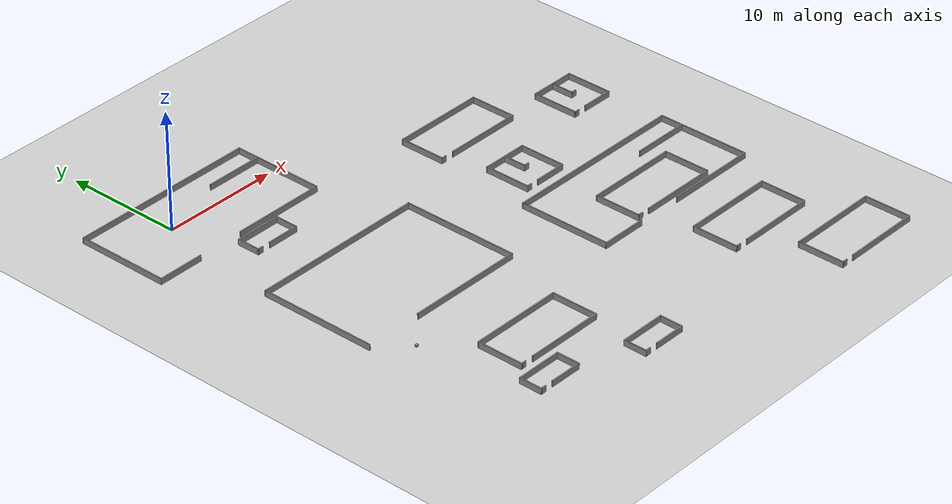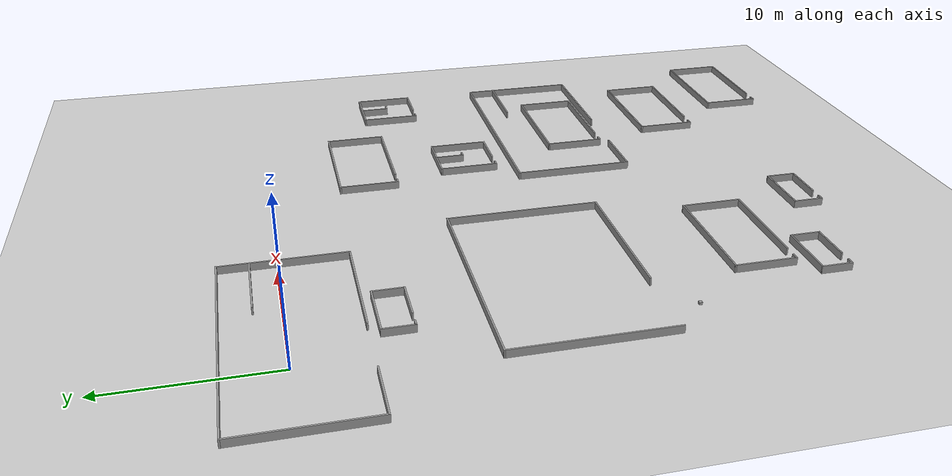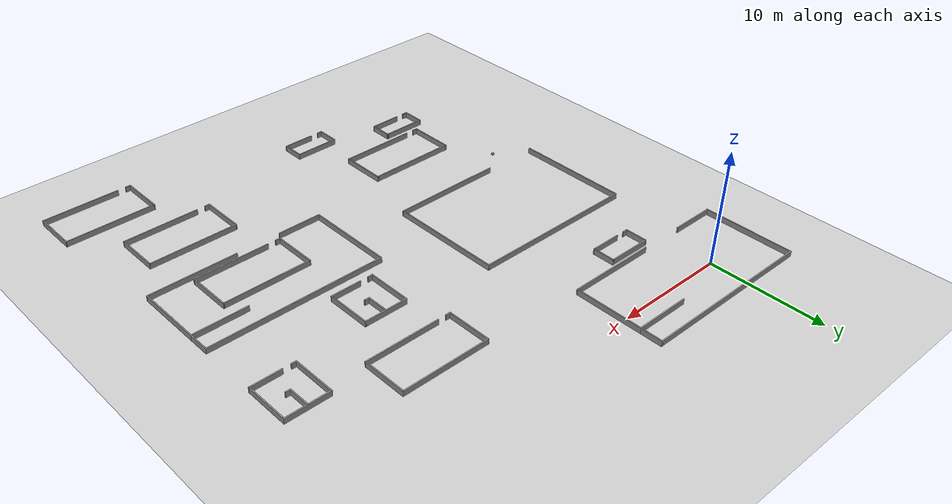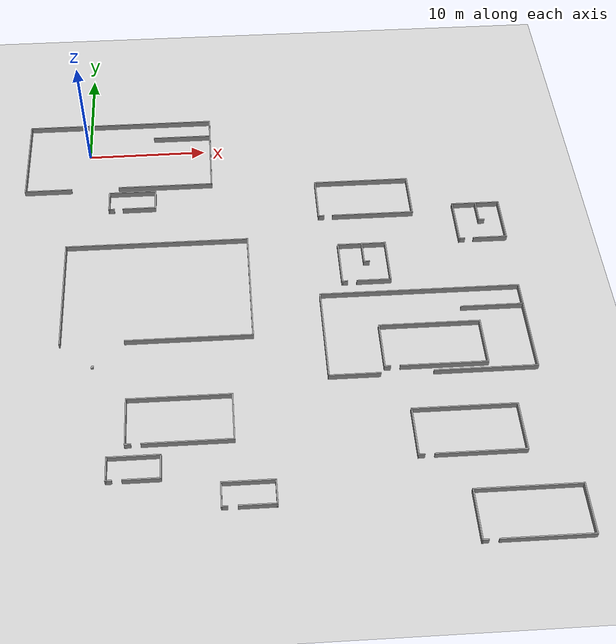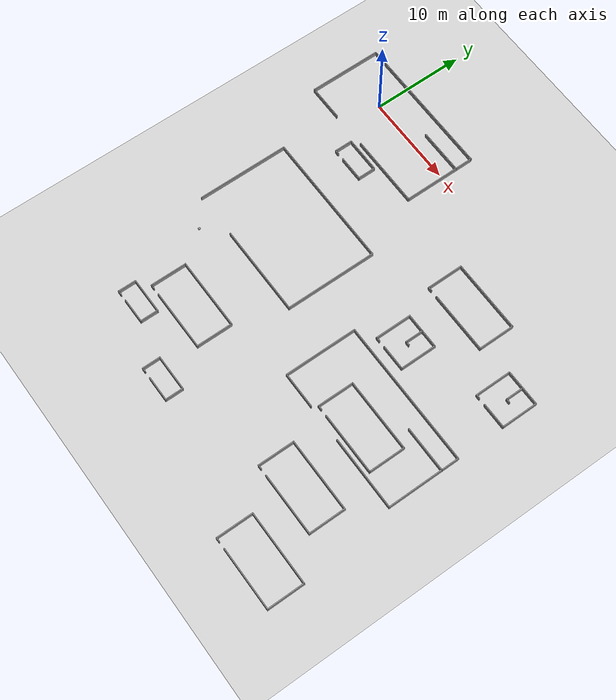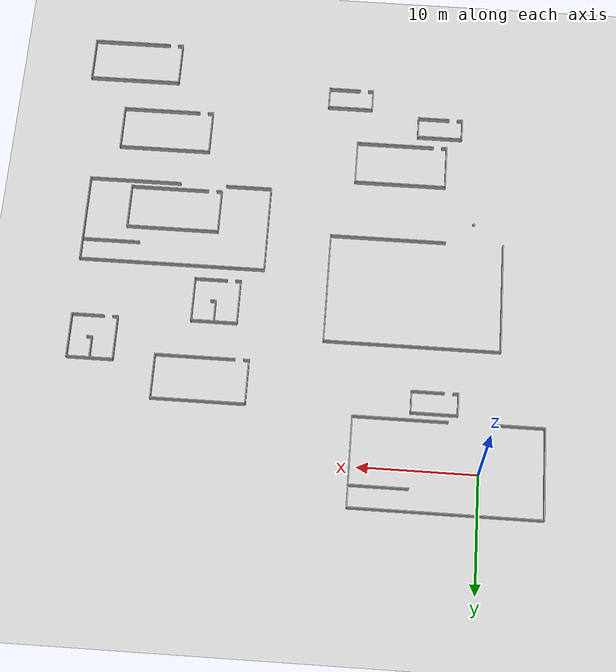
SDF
<sdf version="1.6">
 <world name="default">
  <model name="ground_plane">
   <static>1</static>
   <link name="link">
    <collision name="collision">
     <geometry><plane><normal>0 0 1</normal><size>80 80</size></plane></geometry>
     <surface>
      <contact><collide_bitmask>65535</collide_bitmask></contact>
      <friction><ode><mu>100</mu><mu2>50</mu2></ode></friction>
     </surface>
     <max_contacts>15</max_contacts>
    </collision>
    <visual name="visual">
     <cast_shadows>0</cast_shadows>
     <geometry><plane><normal>0 0 1</normal><size>80 80</size></plane></geometry>
     <material>
      <script><uri>file://media/materials/scripts/gazebo.material</uri><name>Gazebo/Grey</name></script>
     </material>
    </visual>
   </link>
  </model>
  <model name="shape2">
   <pose>3.8 -5.9 0 0 -0 0</pose>
   <link name="Wall_0">
    <collision name="Wall_0_Collision">
     <geometry><box><size>3.98685 0.1 0.5</size></box></geometry>
     <pose>0 0 0.25 0 -0 0</pose>
    </collision>
    <visual name="Wall_0_Visual">
     <pose>0 0 0.25 0 -0 0</pose>
     <geometry><box><size>3.98685 0.1 0.5</size></box></geometry>
     <material>
      <script><uri>file://media/materials/scripts/gazebo.material</uri><name>Gazebo/Grey</name></script>
      <ambient>1 1 1 1</ambient>
     </material>
     <meta><layer>0</layer></meta>
    </visual>
    <pose>0.003288 0.95 0 0 -0 0</pose>
   </link>
   <link name="Wall_1">
    <collision name="Wall_1_Collision">
     <geometry><box><size>2 0.1 0.5</size></box></geometry>
     <pose>0 0 0.25 0 -0 0</pose>
    </collision>
    <visual name="Wall_1_Visual">
     <pose>0 0 0.25 0 -0 0</pose>
     <geometry><box><size>2 0.1 0.5</size></box></geometry>
     <material>
      <script><uri>file://media/materials/scripts/gazebo.material</uri><name>Gazebo/Grey</name></script>
      <ambient>1 1 1 1</ambient>
     </material>
     <meta><layer>0</layer></meta>
    </visual>
    <pose>1.94671 0 0 0 -0 -1.5708</pose>
   </link>
   <link name="Wall_2">
    <collision name="Wall_2_Collision">
     <geometry><box><size>2.8 0.1 0.5</size></box></geometry>
     <pose>0 0 0.25 0 -0 0</pose>
    </collision>
    <visual name="Wall_2_Visual">
     <pose>0 0 0.25 0 -0 0</pose>
     <geometry><box><size>2.8 0.1 0.5</size></box></geometry>
     <material>
      <script><uri>file://media/materials/scripts/gazebo.material</uri><name>Gazebo/Grey</name></script>
      <ambient>1 1 1 1</ambient>
     </material>
     <meta><layer>0</layer></meta>
    </visual>
    <pose>0.596712 -0.95 0 0 -0 3.14159</pose>
   </link>
   <link name="Wall_4">
    <collision name="Wall_4_Collision">
     <geometry><box><size>2 0.1 0.5</size></box></geometry>
     <pose>0 0 0.25 0 -0 0</pose>
    </collision>
    <visual name="Wall_4_Visual">
     <pose>0 0 0.25 0 -0 0</pose>
     <geometry><box><size>2 0.1 0.5</size></box></geometry>
     <material>
      <script><uri>file://media/materials/scripts/gazebo.material</uri><name>Gazebo/Grey</name></script>
      <ambient>1 1 1 1</ambient>
     </material>
     <meta><layer>0</layer></meta>
    </visual>
    <pose>-1.94671 0 0 0 -0 -1.5708</pose>
   </link>
   <link name="Wall_5">
    <collision name="Wall_5_Collision">
     <geometry><box><size>0.5 0.1 0.5</size></box></geometry>
     <pose>0 0 0.25 0 -0 0</pose>
    </collision>
    <visual name="Wall_5_Visual">
     <pose>0 0 0.25 0 -0 0</pose>
     <geometry><box><size>0.5 0.1 0.5</size></box></geometry>
     <material>
      <script><uri>file://media/materials/scripts/gazebo.material</uri><name>Gazebo/Grey</name></script>
      <ambient>1 1 1 1</ambient>
     </material>
     <meta><layer>0</layer></meta>
    </visual>
    <pose>-1.74671 -0.95 0 0 -0 0</pose>
   </link>
   <static>1</static>
  </model>
  <model name="shape2">
   <pose>2.6 -0.400002 0 0 -0 0</pose>
   <link name="Wall_0">
    <collision name="Wall_0_Collision">
     <geometry><box><size>7.94986 0.1 0.5</size></box></geometry>
     <pose>0 0 0.25 0 -0 0</pose>
    </collision>
    <visual name="Wall_0_Visual">
     <pose>0 0 0.25 0 -0 0</pose>
     <geometry><box><size>7.94986 0.1 0.5</size></box></geometry>
     <material>
      <script><uri>file://media/materials/scripts/gazebo.material</uri><name>Gazebo/Grey</name></script>
      <ambient>1 1 1 1</ambient>
     </material>
     <meta><layer>0</layer></meta>
    </visual>
    <pose>-7.95004 0 0 0 -0 -1.5708</pose>
   </link>
   <link name="Wall_1">
    <collision name="Wall_1_Collision">
     <geometry><box><size>4 0.1 0.5</size></box></geometry>
     <pose>0 0 0.25 0 -0 0</pose>
    </collision>
    <visual name="Wall_1_Visual">
     <pose>0 0 0.25 0 -0 0</pose>
     <geometry><box><size>4 0.1 0.5</size></box></geometry>
     <material>
      <script><uri>file://media/materials/scripts/gazebo.material</uri><name>Gazebo/Grey</name></script>
      <ambient>1 1 1 1</ambient>
     </material>
     <meta><layer>0</layer></meta>
    </visual>
    <pose>-6.00004 -3.925 0 0 -0 0</pose>
   </link>
   <link name="Wall_3">
    <collision name="Wall_3_Collision">
     <geometry><box><size>16 0.1 0.5</size></box></geometry>
     <pose>0 0 0.25 0 -0 0</pose>
    </collision>
    <visual name="Wall_3_Visual">
     <pose>0 0 0.25 0 -0 0</pose>
     <geometry><box><size>16 0.1 0.5</size></box></geometry>
     <material>
      <script><uri>file://media/materials/scripts/gazebo.material</uri><name>Gazebo/Grey</name></script>
      <ambient>1 1 1 1</ambient>
     </material>
     <meta><layer>0</layer></meta>
    </visual>
    <pose>-4e-05 3.925 0 0 -0 0</pose>
   </link>
   <link name="Wall_4">
    <collision name="Wall_4_Collision">
     <geometry><box><size>2 0.1 0.5</size></box></geometry>
     <pose>0 0 0.25 0 -0 0</pose>
    </collision>
    <visual name="Wall_4_Visual">
     <pose>0 0 0.25 0 -0 0</pose>
     <geometry><box><size>2 0.1 0.5</size></box></geometry>
     <material>
      <script><uri>file://media/materials/scripts/gazebo.material</uri><name>Gazebo/Grey</name></script>
      <ambient>1 1 1 1</ambient>
     </material>
     <meta><layer>0</layer></meta>
    </visual>
    <pose>7.94996 2.975 0 0 -0 -1.5708</pose>
   </link>
   <link name="Wall_5">
    <collision name="Wall_5_Collision">
     <geometry><box><size>5 0.1 0.5</size></box></geometry>
     <pose>0 0 0.25 0 -0 0</pose>
    </collision>
    <visual name="Wall_5_Visual">
     <pose>0 0 0.25 0 -0 0</pose>
     <geometry><box><size>5 0.1 0.5</size></box></geometry>
     <material>
      <script><uri>file://media/materials/scripts/gazebo.material</uri><name>Gazebo/Grey</name></script>
      <ambient>1 1 1 1</ambient>
     </material>
     <meta><layer>0</layer></meta>
    </visual>
    <pose>5.49996 2.025 0 0 -0 3.14159</pose>
   </link>
   <link name="Wall_7">
    <collision name="Wall_7_Collision">
     <geometry><box><size>6.05 0.1 0.5</size></box></geometry>
     <pose>0 0 0.25 0 -0 0</pose>
    </collision>
    <visual name="Wall_7_Visual">
     <pose>0 0 0.25 0 -0 0</pose>
     <geometry><box><size>6.05 0.1 0.5</size></box></geometry>
     <material>
      <script><uri>file://media/materials/scripts/gazebo.material</uri><name>Gazebo/Grey</name></script>
      <ambient>1 1 1 1</ambient>
     </material>
     <meta><layer>0</layer></meta>
    </visual>
    <pose>7.94996 -0.95 0 0 -0 -1.5708</pose>
   </link>
   <link name="Wall_8">
    <collision name="Wall_8_Collision">
     <geometry><box><size>8.00016 0.1 0.5</size></box></geometry>
     <pose>0 0 0.25 0 -0 0</pose>
    </collision>
    <visual name="Wall_8_Visual">
     <pose>0 0 0.25 0 -0 0</pose>
     <geometry><box><size>8.00016 0.1 0.5</size></box></geometry>
     <material>
      <script><uri>file://media/materials/scripts/gazebo.material</uri><name>Gazebo/Grey</name></script>
      <ambient>1 1 1 1</ambient>
     </material>
     <meta><layer>0</layer></meta>
    </visual>
    <pose>3.99996 -3.925 0 0 -0 3.14159</pose>
   </link>
   <static>1</static>
  </model>
  <model name="shape3">
   <pose>5.9 -15.8 0 0 -0 0</pose>
   <link name="Wall_10">
    <collision name="Wall_10_Collision">
     <geometry><box><size>10 0.1 0.5</size></box></geometry>
     <pose>0 0 0.25 0 -0 0</pose>
    </collision>
    <visual name="Wall_10_Visual">
     <pose>0 0 0.25 0 -0 0</pose>
     <geometry><box><size>10 0.1 0.5</size></box></geometry>
     <material>
      <script><uri>file://media/materials/scripts/gazebo.material</uri><name>Gazebo/Grey</name></script>
      <ambient>1 1 1 1</ambient>
     </material>
     <meta><layer>0</layer></meta>
    </visual>
    <pose>2.5 -4.95 0 0 -0 3.14159</pose>
   </link>
   <link name="Wall_12">
    <collision name="Wall_12_Collision">
     <geometry><box><size>10 0.1 0.5</size></box></geometry>
     <pose>0 0 0.25 0 -0 0</pose>
    </collision>
    <visual name="Wall_12_Visual">
     <pose>0 0 0.25 0 -0 0</pose>
     <geometry><box><size>10 0.1 0.5</size></box></geometry>
     <material>
      <script><uri>file://media/materials/scripts/gazebo.material</uri><name>Gazebo/Grey</name></script>
      <ambient>1 1 1 1</ambient>
     </material>
     <meta><layer>0</layer></meta>
    </visual>
    <pose>-7.45 -0 0 0 -0 -1.5708</pose>
   </link>
   <link name="Wall_8">
    <collision name="Wall_8_Collision">
     <geometry><box><size>15 0.1 0.5</size></box></geometry>
     <pose>0 0 0.25 0 -0 0</pose>
    </collision>
    <visual name="Wall_8_Visual">
     <pose>0 0 0.25 0 -0 0</pose>
     <geometry><box><size>15 0.1 0.5</size></box></geometry>
     <material>
      <script><uri>file://media/materials/scripts/gazebo.material</uri><name>Gazebo/Grey</name></script>
      <ambient>1 1 1 1</ambient>
     </material>
     <meta><layer>0</layer></meta>
    </visual>
    <pose>-0 4.95 0 0 -0 0</pose>
   </link>
   <link name="Wall_9">
    <collision name="Wall_9_Collision">
     <geometry><box><size>10 0.1 0.5</size></box></geometry>
     <pose>0 0 0.25 0 -0 0</pose>
    </collision>
    <visual name="Wall_9_Visual">
     <pose>0 0 0.25 0 -0 0</pose>
     <geometry><box><size>10 0.1 0.5</size></box></geometry>
     <material>
      <script><uri>file://media/materials/scripts/gazebo.material</uri><name>Gazebo/Grey</name></script>
      <ambient>1 1 1 1</ambient>
     </material>
     <meta><layer>0</layer></meta>
    </visual>
    <pose>7.45 -0 0 0 -0 -1.5708</pose>
   </link>
   <static>1</static>
  </model>
  <model name="shape2">
   <pose>26.8 -21 0 0 -0 0</pose>
   <link name="Wall_0">
    <collision name="Wall_0_Collision">
     <geometry><box><size>7.94986 0.1 0.5</size></box></geometry>
     <pose>0 0 0.25 0 -0 0</pose>
    </collision>
    <visual name="Wall_0_Visual">
     <pose>0 0 0.25 0 -0 0</pose>
     <geometry><box><size>7.94986 0.1 0.5</size></box></geometry>
     <material>
      <script><uri>file://media/materials/scripts/gazebo.material</uri><name>Gazebo/Grey</name></script>
      <ambient>1 1 1 1</ambient>
     </material>
     <meta><layer>0</layer></meta>
    </visual>
    <pose>-7.95004 0 0 0 -0 -1.5708</pose>
   </link>
   <link name="Wall_1">
    <collision name="Wall_1_Collision">
     <geometry><box><size>4 0.1 0.5</size></box></geometry>
     <pose>0 0 0.25 0 -0 0</pose>
    </collision>
    <visual name="Wall_1_Visual">
     <pose>0 0 0.25 0 -0 0</pose>
     <geometry><box><size>4 0.1 0.5</size></box></geometry>
     <material>
      <script><uri>file://media/materials/scripts/gazebo.material</uri><name>Gazebo/Grey</name></script>
      <ambient>1 1 1 1</ambient>
     </material>
     <meta><layer>0</layer></meta>
    </visual>
    <pose>-6.00004 -3.925 0 0 -0 0</pose>
   </link>
   <link name="Wall_3">
    <collision name="Wall_3_Collision">
     <geometry><box><size>16 0.1 0.5</size></box></geometry>
     <pose>0 0 0.25 0 -0 0</pose>
    </collision>
    <visual name="Wall_3_Visual">
     <pose>0 0 0.25 0 -0 0</pose>
     <geometry><box><size>16 0.1 0.5</size></box></geometry>
     <material>
      <script><uri>file://media/materials/scripts/gazebo.material</uri><name>Gazebo/Grey</name></script>
      <ambient>1 1 1 1</ambient>
     </material>
     <meta><layer>0</layer></meta>
    </visual>
    <pose>-4e-05 3.925 0 0 -0 0</pose>
   </link>
   <link name="Wall_4">
    <collision name="Wall_4_Collision">
     <geometry><box><size>2 0.1 0.5</size></box></geometry>
     <pose>0 0 0.25 0 -0 0</pose>
    </collision>
    <visual name="Wall_4_Visual">
     <pose>0 0 0.25 0 -0 0</pose>
     <geometry><box><size>2 0.1 0.5</size></box></geometry>
     <material>
      <script><uri>file://media/materials/scripts/gazebo.material</uri><name>Gazebo/Grey</name></script>
      <ambient>1 1 1 1</ambient>
     </material>
     <meta><layer>0</layer></meta>
    </visual>
    <pose>7.94996 2.975 0 0 -0 -1.5708</pose>
   </link>
   <link name="Wall_5">
    <collision name="Wall_5_Collision">
     <geometry><box><size>5 0.1 0.5</size></box></geometry>
     <pose>0 0 0.25 0 -0 0</pose>
    </collision>
    <visual name="Wall_5_Visual">
     <pose>0 0 0.25 0 -0 0</pose>
     <geometry><box><size>5 0.1 0.5</size></box></geometry>
     <material>
      <script><uri>file://media/materials/scripts/gazebo.material</uri><name>Gazebo/Grey</name></script>
      <ambient>1 1 1 1</ambient>
     </material>
     <meta><layer>0</layer></meta>
    </visual>
    <pose>5.49996 2.025 0 0 -0 3.14159</pose>
   </link>
   <link name="Wall_7">
    <collision name="Wall_7_Collision">
     <geometry><box><size>6.05 0.1 0.5</size></box></geometry>
     <pose>0 0 0.25 0 -0 0</pose>
    </collision>
    <visual name="Wall_7_Visual">
     <pose>0 0 0.25 0 -0 0</pose>
     <geometry><box><size>6.05 0.1 0.5</size></box></geometry>
     <material>
      <script><uri>file://media/materials/scripts/gazebo.material</uri><name>Gazebo/Grey</name></script>
      <ambient>1 1 1 1</ambient>
     </material>
     <meta><layer>0</layer></meta>
    </visual>
    <pose>7.94996 -0.95 0 0 -0 -1.5708</pose>
   </link>
   <link name="Wall_8">
    <collision name="Wall_8_Collision">
     <geometry><box><size>8.00016 0.1 0.5</size></box></geometry>
     <pose>0 0 0.25 0 -0 0</pose>
    </collision>
    <visual name="Wall_8_Visual">
     <pose>0 0 0.25 0 -0 0</pose>
     <geometry><box><size>8.00016 0.1 0.5</size></box></geometry>
     <material>
      <script><uri>file://media/materials/scripts/gazebo.material</uri><name>Gazebo/Grey</name></script>
      <ambient>1 1 1 1</ambient>
     </material>
     <meta><layer>0</layer></meta>
    </visual>
    <pose>3.99996 -3.925 0 0 -0 3.14159</pose>
   </link>
   <static>1</static>
  </model>
  <model name="shape4">
   <pose>32.8 -9.9 0 0 -0 0</pose>
   <link name="Wall_0">
    <collision name="Wall_0_Collision">
     <geometry><box><size>4 0.1 0.5</size></box></geometry>
     <pose>0 0 0.25 0 -0 0</pose>
    </collision>
    <visual name="Wall_0_Visual">
     <pose>0 0 0.25 0 -0 0</pose>
     <geometry><box><size>4 0.1 0.5</size></box></geometry>
     <material>
      <script><uri>file://media/materials/scripts/gazebo.material</uri><name>Gazebo/Grey</name></script>
      <ambient>1 1 1 1</ambient>
     </material>
     <meta><layer>0</layer></meta>
    </visual>
    <pose>-1.95 0 0 0 -0 -1.5708</pose>
   </link>
   <link name="Wall_1">
    <collision name="Wall_1_Collision">
     <geometry><box><size>0.5 0.1 0.5</size></box></geometry>
     <pose>0 0 0.25 0 -0 0</pose>
    </collision>
    <visual name="Wall_1_Visual">
     <pose>0 0 0.25 0 -0 0</pose>
     <geometry><box><size>0.5 0.1 0.5</size></box></geometry>
     <material>
      <script><uri>file://media/materials/scripts/gazebo.material</uri><name>Gazebo/Grey</name></script>
      <ambient>1 1 1 1</ambient>
     </material>
     <meta><layer>0</layer></meta>
    </visual>
    <pose>-1.75 -1.95 0 0 -0 0</pose>
   </link>
   <link name="Wall_3">
    <collision name="Wall_3_Collision">
     <geometry><box><size>4 0.1 0.5</size></box></geometry>
     <pose>0 0 0.25 0 -0 0</pose>
    </collision>
    <visual name="Wall_3_Visual">
     <pose>0 0 0.25 0 -0 0</pose>
     <geometry><box><size>4 0.1 0.5</size></box></geometry>
     <material>
      <script><uri>file://media/materials/scripts/gazebo.material</uri><name>Gazebo/Grey</name></script>
      <ambient>1 1 1 1</ambient>
     </material>
     <meta><layer>0</layer></meta>
    </visual>
    <pose>0 1.95 0 0 -0 0</pose>
   </link>
   <link name="Wall_4">
    <collision name="Wall_4_Collision">
     <geometry><box><size>4 0.1 0.5</size></box></geometry>
     <pose>0 0 0.25 0 -0 0</pose>
    </collision>
    <visual name="Wall_4_Visual">
     <pose>0 0 0.25 0 -0 0</pose>
     <geometry><box><size>4 0.1 0.5</size></box></geometry>
     <material>
      <script><uri>file://media/materials/scripts/gazebo.material</uri><name>Gazebo/Grey</name></script>
      <ambient>1 1 1 1</ambient>
     </material>
     <meta><layer>0</layer></meta>
    </visual>
    <pose>1.95 0 0 0 -0 -1.5708</pose>
   </link>
   <link name="Wall_5">
    <collision name="Wall_5_Collision">
     <geometry><box><size>2.8 0.1 0.5</size></box></geometry>
     <pose>0 0 0.25 0 -0 0</pose>
    </collision>
    <visual name="Wall_5_Visual">
     <pose>0 0 0.25 0 -0 0</pose>
     <geometry><box><size>2.8 0.1 0.5</size></box></geometry>
     <material>
      <script><uri>file://media/materials/scripts/gazebo.material</uri><name>Gazebo/Grey</name></script>
      <ambient>1 1 1 1</ambient>
     </material>
     <meta><layer>0</layer></meta>
    </visual>
    <pose>0.6 -1.95 0 0 -0 3.14159</pose>
   </link>
   <link name="Wall_7">
    <collision name="Wall_7_Collision">
     <geometry><box><size>2 0.1 0.5</size></box></geometry>
     <pose>0 0 0.25 0 -0 0</pose>
    </collision>
    <visual name="Wall_7_Visual">
     <pose>0 0 0.25 0 -0 0</pose>
     <geometry><box><size>2 0.1 0.5</size></box></geometry>
     <material>
      <script><uri>file://media/materials/scripts/gazebo.material</uri><name>Gazebo/Grey</name></script>
      <ambient>1 1 1 1</ambient>
     </material>
     <meta><layer>0</layer></meta>
    </visual>
    <pose>0.015 0.991 0 0 -0 -1.5708</pose>
   </link>
   <link name="Wall_8">
    <collision name="Wall_8_Collision">
     <geometry><box><size>0.5 0.1 0.5</size></box></geometry>
     <pose>0 0 0.25 0 -0 0</pose>
    </collision>
    <visual name="Wall_8_Visual">
     <pose>0 0 0.25 0 -0 0</pose>
     <geometry><box><size>0.5 0.1 0.5</size></box></geometry>
     <material>
      <script><uri>file://media/materials/scripts/gazebo.material</uri><name>Gazebo/Grey</name></script>
      <ambient>1 1 1 1</ambient>
     </material>
     <meta><layer>0</layer></meta>
    </visual>
    <pose>0.215 0.041 0 0 -0 0</pose>
   </link>
   <static>1</static>
  </model>
  <model name="shape2">
   <pose>4.3 -32 0 0 -0 0</pose>
   <link name="Wall_0">
    <collision name="Wall_0_Collision">
     <geometry><box><size>3.98685 0.1 0.5</size></box></geometry>
     <pose>0 0 0.25 0 -0 0</pose>
    </collision>
    <visual name="Wall_0_Visual">
     <pose>0 0 0.25 0 -0 0</pose>
     <geometry><box><size>3.98685 0.1 0.5</size></box></geometry>
     <material>
      <script><uri>file://media/materials/scripts/gazebo.material</uri><name>Gazebo/Grey</name></script>
      <ambient>1 1 1 1</ambient>
     </material>
     <meta><layer>0</layer></meta>
    </visual>
    <pose>0.003288 0.95 0 0 -0 0</pose>
   </link>
   <link name="Wall_1">
    <collision name="Wall_1_Collision">
     <geometry><box><size>2 0.1 0.5</size></box></geometry>
     <pose>0 0 0.25 0 -0 0</pose>
    </collision>
    <visual name="Wall_1_Visual">
     <pose>0 0 0.25 0 -0 0</pose>
     <geometry><box><size>2 0.1 0.5</size></box></geometry>
     <material>
      <script><uri>file://media/materials/scripts/gazebo.material</uri><name>Gazebo/Grey</name></script>
      <ambient>1 1 1 1</ambient>
     </material>
     <meta><layer>0</layer></meta>
    </visual>
    <pose>1.94671 0 0 0 -0 -1.5708</pose>
   </link>
   <link name="Wall_2">
    <collision name="Wall_2_Collision">
     <geometry><box><size>2.8 0.1 0.5</size></box></geometry>
     <pose>0 0 0.25 0 -0 0</pose>
    </collision>
    <visual name="Wall_2_Visual">
     <pose>0 0 0.25 0 -0 0</pose>
     <geometry><box><size>2.8 0.1 0.5</size></box></geometry>
     <material>
      <script><uri>file://media/materials/scripts/gazebo.material</uri><name>Gazebo/Grey</name></script>
      <ambient>1 1 1 1</ambient>
     </material>
     <meta><layer>0</layer></meta>
    </visual>
    <pose>0.596712 -0.95 0 0 -0 3.14159</pose>
   </link>
   <link name="Wall_4">
    <collision name="Wall_4_Collision">
     <geometry><box><size>2 0.1 0.5</size></box></geometry>
     <pose>0 0 0.25 0 -0 0</pose>
    </collision>
    <visual name="Wall_4_Visual">
     <pose>0 0 0.25 0 -0 0</pose>
     <geometry><box><size>2 0.1 0.5</size></box></geometry>
     <material>
      <script><uri>file://media/materials/scripts/gazebo.material</uri><name>Gazebo/Grey</name></script>
      <ambient>1 1 1 1</ambient>
     </material>
     <meta><layer>0</layer></meta>
    </visual>
    <pose>-1.94671 0 0 0 -0 -1.5708</pose>
   </link>
   <link name="Wall_5">
    <collision name="Wall_5_Collision">
     <geometry><box><size>0.5 0.1 0.5</size></box></geometry>
     <pose>0 0 0.25 0 -0 0</pose>
    </collision>
    <visual name="Wall_5_Visual">
     <pose>0 0 0.25 0 -0 0</pose>
     <geometry><box><size>0.5 0.1 0.5</size></box></geometry>
     <material>
      <script><uri>file://media/materials/scripts/gazebo.material</uri><name>Gazebo/Grey</name></script>
      <ambient>1 1 1 1</ambient>
     </material>
     <meta><layer>0</layer></meta>
    </visual>
    <pose>-1.74671 -0.95 0 0 -0 0</pose>
   </link>
   <static>1</static>
  </model>
  <model name="shape3">
   <pose>28.6 -30.2 0 0 -0 0</pose>
   <link name="Wall_11">
    <collision name="Wall_11_Collision">
     <geometry><box><size>4 0.1 0.5</size></box></geometry>
     <pose>0 0 0.25 0 -0 0</pose>
    </collision>
    <visual name="Wall_11_Visual">
     <pose>0 0 0.25 0 -0 0</pose>
     <geometry><box><size>4 0.1 0.5</size></box></geometry>
     <material>
      <script><uri>file://media/materials/scripts/gazebo.material</uri><name>Gazebo/Grey</name></script>
      <ambient>1 1 1 1</ambient>
     </material>
     <meta><layer>0</layer></meta>
    </visual>
    <pose>-3.95 0 0 0 -0 -1.5708</pose>
   </link>
   <link name="Wall_12">
    <collision name="Wall_12_Collision">
     <geometry><box><size>0.5 0.1 0.5</size></box></geometry>
     <pose>0 0 0.25 0 -0 0</pose>
    </collision>
    <visual name="Wall_12_Visual">
     <pose>0 0 0.25 0 -0 0</pose>
     <geometry><box><size>0.5 0.1 0.5</size></box></geometry>
     <material>
      <script><uri>file://media/materials/scripts/gazebo.material</uri><name>Gazebo/Grey</name></script>
      <ambient>1 1 1 1</ambient>
     </material>
     <meta><layer>0</layer></meta>
    </visual>
    <pose>-3.75 -1.95 0 0 -0 0</pose>
   </link>
   <link name="Wall_7">
    <collision name="Wall_7_Collision">
     <geometry><box><size>8 0.1 0.5</size></box></geometry>
     <pose>0 0 0.25 0 -0 0</pose>
    </collision>
    <visual name="Wall_7_Visual">
     <pose>0 0 0.25 0 -0 0</pose>
     <geometry><box><size>8 0.1 0.5</size></box></geometry>
     <material>
      <script><uri>file://media/materials/scripts/gazebo.material</uri><name>Gazebo/Grey</name></script>
      <ambient>1 1 1 1</ambient>
     </material>
     <meta><layer>0</layer></meta>
    </visual>
    <pose>-0 1.95 0 0 -0 0</pose>
   </link>
   <link name="Wall_8">
    <collision name="Wall_8_Collision">
     <geometry><box><size>4 0.1 0.5</size></box></geometry>
     <pose>0 0 0.25 0 -0 0</pose>
    </collision>
    <visual name="Wall_8_Visual">
     <pose>0 0 0.25 0 -0 0</pose>
     <geometry><box><size>4 0.1 0.5</size></box></geometry>
     <material>
      <script><uri>file://media/materials/scripts/gazebo.material</uri><name>Gazebo/Grey</name></script>
      <ambient>1 1 1 1</ambient>
     </material>
     <meta><layer>0</layer></meta>
    </visual>
    <pose>3.95 0 0 0 -0 -1.5708</pose>
   </link>
   <link name="Wall_9">
    <collision name="Wall_9_Collision">
     <geometry><box><size>6.8 0.1 0.5</size></box></geometry>
     <pose>0 0 0.25 0 -0 0</pose>
    </collision>
    <visual name="Wall_9_Visual">
     <pose>0 0 0.25 0 -0 0</pose>
     <geometry><box><size>6.8 0.1 0.5</size></box></geometry>
     <material>
      <script><uri>file://media/materials/scripts/gazebo.material</uri><name>Gazebo/Grey</name></script>
      <ambient>1 1 1 1</ambient>
     </material>
     <meta><layer>0</layer></meta>
    </visual>
    <pose>0.6 -1.95 0 0 -0 3.14159</pose>
   </link>
   <static>1</static>
  </model>
  <model name="shape4">
   <pose>22.7 -13.9 0 0 -0 0</pose>
   <link name="Wall_0">
    <collision name="Wall_0_Collision">
     <geometry><box><size>4 0.1 0.5</size></box></geometry>
     <pose>0 0 0.25 0 -0 0</pose>
    </collision>
    <visual name="Wall_0_Visual">
     <pose>0 0 0.25 0 -0 0</pose>
     <geometry><box><size>4 0.1 0.5</size></box></geometry>
     <material>
      <script><uri>file://media/materials/scripts/gazebo.material</uri><name>Gazebo/Grey</name></script>
      <ambient>1 1 1 1</ambient>
     </material>
     <meta><layer>0</layer></meta>
    </visual>
    <pose>-1.95 0 0 0 -0 -1.5708</pose>
   </link>
   <link name="Wall_1">
    <collision name="Wall_1_Collision">
     <geometry><box><size>0.5 0.1 0.5</size></box></geometry>
     <pose>0 0 0.25 0 -0 0</pose>
    </collision>
    <visual name="Wall_1_Visual">
     <pose>0 0 0.25 0 -0 0</pose>
     <geometry><box><size>0.5 0.1 0.5</size></box></geometry>
     <material>
      <script><uri>file://media/materials/scripts/gazebo.material</uri><name>Gazebo/Grey</name></script>
      <ambient>1 1 1 1</ambient>
     </material>
     <meta><layer>0</layer></meta>
    </visual>
    <pose>-1.75 -1.95 0 0 -0 0</pose>
   </link>
   <link name="Wall_3">
    <collision name="Wall_3_Collision">
     <geometry><box><size>4 0.1 0.5</size></box></geometry>
     <pose>0 0 0.25 0 -0 0</pose>
    </collision>
    <visual name="Wall_3_Visual">
     <pose>0 0 0.25 0 -0 0</pose>
     <geometry><box><size>4 0.1 0.5</size></box></geometry>
     <material>
      <script><uri>file://media/materials/scripts/gazebo.material</uri><name>Gazebo/Grey</name></script>
      <ambient>1 1 1 1</ambient>
     </material>
     <meta><layer>0</layer></meta>
    </visual>
    <pose>0 1.95 0 0 -0 0</pose>
   </link>
   <link name="Wall_4">
    <collision name="Wall_4_Collision">
     <geometry><box><size>4 0.1 0.5</size></box></geometry>
     <pose>0 0 0.25 0 -0 0</pose>
    </collision>
    <visual name="Wall_4_Visual">
     <pose>0 0 0.25 0 -0 0</pose>
     <geometry><box><size>4 0.1 0.5</size></box></geometry>
     <material>
      <script><uri>file://media/materials/scripts/gazebo.material</uri><name>Gazebo/Grey</name></script>
      <ambient>1 1 1 1</ambient>
     </material>
     <meta><layer>0</layer></meta>
    </visual>
    <pose>1.95 0 0 0 -0 -1.5708</pose>
   </link>
   <link name="Wall_5">
    <collision name="Wall_5_Collision">
     <geometry><box><size>2.8 0.1 0.5</size></box></geometry>
     <pose>0 0 0.25 0 -0 0</pose>
    </collision>
    <visual name="Wall_5_Visual">
     <pose>0 0 0.25 0 -0 0</pose>
     <geometry><box><size>2.8 0.1 0.5</size></box></geometry>
     <material>
      <script><uri>file://media/materials/scripts/gazebo.material</uri><name>Gazebo/Grey</name></script>
      <ambient>1 1 1 1</ambient>
     </material>
     <meta><layer>0</layer></meta>
    </visual>
    <pose>0.6 -1.95 0 0 -0 3.14159</pose>
   </link>
   <link name="Wall_7">
    <collision name="Wall_7_Collision">
     <geometry><box><size>2 0.1 0.5</size></box></geometry>
     <pose>0 0 0.25 0 -0 0</pose>
    </collision>
    <visual name="Wall_7_Visual">
     <pose>0 0 0.25 0 -0 0</pose>
     <geometry><box><size>2 0.1 0.5</size></box></geometry>
     <material>
      <script><uri>file://media/materials/scripts/gazebo.material</uri><name>Gazebo/Grey</name></script>
      <ambient>1 1 1 1</ambient>
     </material>
     <meta><layer>0</layer></meta>
    </visual>
    <pose>0.015 0.991 0 0 -0 -1.5708</pose>
   </link>
   <link name="Wall_8">
    <collision name="Wall_8_Collision">
     <geometry><box><size>0.5 0.1 0.5</size></box></geometry>
     <pose>0 0 0.25 0 -0 0</pose>
    </collision>
    <visual name="Wall_8_Visual">
     <pose>0 0 0.25 0 -0 0</pose>
     <geometry><box><size>0.5 0.1 0.5</size></box></geometry>
     <material>
      <script><uri>file://media/materials/scripts/gazebo.material</uri><name>Gazebo/Grey</name></script>
      <ambient>1 1 1 1</ambient>
     </material>
     <meta><layer>0</layer></meta>
    </visual>
    <pose>0.215 0.041 0 0 -0 0</pose>
   </link>
   <static>1</static>
  </model>
  <model name="shape2">
   <pose>12.4 -34.5 0 0 -0 0</pose>
   <link name="Wall_0">
    <collision name="Wall_0_Collision">
     <geometry><box><size>3.98685 0.1 0.5</size></box></geometry>
     <pose>0 0 0.25 0 -0 0</pose>
    </collision>
    <visual name="Wall_0_Visual">
     <pose>0 0 0.25 0 -0 0</pose>
     <geometry><box><size>3.98685 0.1 0.5</size></box></geometry>
     <material>
      <script><uri>file://media/materials/scripts/gazebo.material</uri><name>Gazebo/Grey</name></script>
      <ambient>1 1 1 1</ambient>
     </material>
     <meta><layer>0</layer></meta>
    </visual>
    <pose>0.003288 0.95 0 0 -0 0</pose>
   </link>
   <link name="Wall_1">
    <collision name="Wall_1_Collision">
     <geometry><box><size>2 0.1 0.5</size></box></geometry>
     <pose>0 0 0.25 0 -0 0</pose>
    </collision>
    <visual name="Wall_1_Visual">
     <pose>0 0 0.25 0 -0 0</pose>
     <geometry><box><size>2 0.1 0.5</size></box></geometry>
     <material>
      <script><uri>file://media/materials/scripts/gazebo.material</uri><name>Gazebo/Grey</name></script>
      <ambient>1 1 1 1</ambient>
     </material>
     <meta><layer>0</layer></meta>
    </visual>
    <pose>1.94671 0 0 0 -0 -1.5708</pose>
   </link>
   <link name="Wall_2">
    <collision name="Wall_2_Collision">
     <geometry><box><size>2.8 0.1 0.5</size></box></geometry>
     <pose>0 0 0.25 0 -0 0</pose>
    </collision>
    <visual name="Wall_2_Visual">
     <pose>0 0 0.25 0 -0 0</pose>
     <geometry><box><size>2.8 0.1 0.5</size></box></geometry>
     <material>
      <script><uri>file://media/materials/scripts/gazebo.material</uri><name>Gazebo/Grey</name></script>
      <ambient>1 1 1 1</ambient>
     </material>
     <meta><layer>0</layer></meta>
    </visual>
    <pose>0.596712 -0.95 0 0 -0 3.14159</pose>
   </link>
   <link name="Wall_4">
    <collision name="Wall_4_Collision">
     <geometry><box><size>2 0.1 0.5</size></box></geometry>
     <pose>0 0 0.25 0 -0 0</pose>
    </collision>
    <visual name="Wall_4_Visual">
     <pose>0 0 0.25 0 -0 0</pose>
     <geometry><box><size>2 0.1 0.5</size></box></geometry>
     <material>
      <script><uri>file://media/materials/scripts/gazebo.material</uri><name>Gazebo/Grey</name></script>
      <ambient>1 1 1 1</ambient>
     </material>
     <meta><layer>0</layer></meta>
    </visual>
    <pose>-1.94671 0 0 0 -0 -1.5708</pose>
   </link>
   <link name="Wall_5">
    <collision name="Wall_5_Collision">
     <geometry><box><size>0.5 0.1 0.5</size></box></geometry>
     <pose>0 0 0.25 0 -0 0</pose>
    </collision>
    <visual name="Wall_5_Visual">
     <pose>0 0 0.25 0 -0 0</pose>
     <geometry><box><size>0.5 0.1 0.5</size></box></geometry>
     <material>
      <script><uri>file://media/materials/scripts/gazebo.material</uri><name>Gazebo/Grey</name></script>
      <ambient>1 1 1 1</ambient>
     </material>
     <meta><layer>0</layer></meta>
    </visual>
    <pose>-1.74671 -0.95 0 0 -0 0</pose>
   </link>
   <static>1</static>
  </model>
  <model name="shape3">
   <pose>27.1 -22.4 0 0 -0 0</pose>
   <link name="Wall_11">
    <collision name="Wall_11_Collision">
     <geometry><box><size>4 0.1 0.5</size></box></geometry>
     <pose>0 0 0.25 0 -0 0</pose>
    </collision>
    <visual name="Wall_11_Visual">
     <pose>0 0 0.25 0 -0 0</pose>
     <geometry><box><size>4 0.1 0.5</size></box></geometry>
     <material>
      <script><uri>file://media/materials/scripts/gazebo.material</uri><name>Gazebo/Grey</name></script>
      <ambient>1 1 1 1</ambient>
     </material>
     <meta><layer>0</layer></meta>
    </visual>
    <pose>-3.95 0 0 0 -0 -1.5708</pose>
   </link>
   <link name="Wall_12">
    <collision name="Wall_12_Collision">
     <geometry><box><size>0.5 0.1 0.5</size></box></geometry>
     <pose>0 0 0.25 0 -0 0</pose>
    </collision>
    <visual name="Wall_12_Visual">
     <pose>0 0 0.25 0 -0 0</pose>
     <geometry><box><size>0.5 0.1 0.5</size></box></geometry>
     <material>
      <script><uri>file://media/materials/scripts/gazebo.material</uri><name>Gazebo/Grey</name></script>
      <ambient>1 1 1 1</ambient>
     </material>
     <meta><layer>0</layer></meta>
    </visual>
    <pose>-3.75 -1.95 0 0 -0 0</pose>
   </link>
   <link name="Wall_7">
    <collision name="Wall_7_Collision">
     <geometry><box><size>8 0.1 0.5</size></box></geometry>
     <pose>0 0 0.25 0 -0 0</pose>
    </collision>
    <visual name="Wall_7_Visual">
     <pose>0 0 0.25 0 -0 0</pose>
     <geometry><box><size>8 0.1 0.5</size></box></geometry>
     <material>
      <script><uri>file://media/materials/scripts/gazebo.material</uri><name>Gazebo/Grey</name></script>
      <ambient>1 1 1 1</ambient>
     </material>
     <meta><layer>0</layer></meta>
    </visual>
    <pose>-0 1.95 0 0 -0 0</pose>
   </link>
   <link name="Wall_8">
    <collision name="Wall_8_Collision">
     <geometry><box><size>4 0.1 0.5</size></box></geometry>
     <pose>0 0 0.25 0 -0 0</pose>
    </collision>
    <visual name="Wall_8_Visual">
     <pose>0 0 0.25 0 -0 0</pose>
     <geometry><box><size>4 0.1 0.5</size></box></geometry>
     <material>
      <script><uri>file://media/materials/scripts/gazebo.material</uri><name>Gazebo/Grey</name></script>
      <ambient>1 1 1 1</ambient>
     </material>
     <meta><layer>0</layer></meta>
    </visual>
    <pose>3.95 0 0 0 -0 -1.5708</pose>
   </link>
   <link name="Wall_9">
    <collision name="Wall_9_Collision">
     <geometry><box><size>6.8 0.1 0.5</size></box></geometry>
     <pose>0 0 0.25 0 -0 0</pose>
    </collision>
    <visual name="Wall_9_Visual">
     <pose>0 0 0.25 0 -0 0</pose>
     <geometry><box><size>6.8 0.1 0.5</size></box></geometry>
     <material>
      <script><uri>file://media/materials/scripts/gazebo.material</uri><name>Gazebo/Grey</name></script>
      <ambient>1 1 1 1</ambient>
     </material>
     <meta><layer>0</layer></meta>
    </visual>
    <pose>0.6 -1.95 0 0 -0 3.14159</pose>
   </link>
   <static>1</static>
  </model>
  <model name="shape3">
   <pose>23.4 -6.7 0 0 -0 0</pose>
   <link name="Wall_11">
    <collision name="Wall_11_Collision">
     <geometry><box><size>4 0.1 0.5</size></box></geometry>
     <pose>0 0 0.25 0 -0 0</pose>
    </collision>
    <visual name="Wall_11_Visual">
     <pose>0 0 0.25 0 -0 0</pose>
     <geometry><box><size>4 0.1 0.5</size></box></geometry>
     <material>
      <script><uri>file://media/materials/scripts/gazebo.material</uri><name>Gazebo/Grey</name></script>
      <ambient>1 1 1 1</ambient>
     </material>
     <meta><layer>0</layer></meta>
    </visual>
    <pose>-3.95 0 0 0 -0 -1.5708</pose>
   </link>
   <link name="Wall_12">
    <collision name="Wall_12_Collision">
     <geometry><box><size>0.5 0.1 0.5</size></box></geometry>
     <pose>0 0 0.25 0 -0 0</pose>
    </collision>
    <visual name="Wall_12_Visual">
     <pose>0 0 0.25 0 -0 0</pose>
     <geometry><box><size>0.5 0.1 0.5</size></box></geometry>
     <material>
      <script><uri>file://media/materials/scripts/gazebo.material</uri><name>Gazebo/Grey</name></script>
      <ambient>1 1 1 1</ambient>
     </material>
     <meta><layer>0</layer></meta>
    </visual>
    <pose>-3.75 -1.95 0 0 -0 0</pose>
   </link>
   <link name="Wall_7">
    <collision name="Wall_7_Collision">
     <geometry><box><size>8 0.1 0.5</size></box></geometry>
     <pose>0 0 0.25 0 -0 0</pose>
    </collision>
    <visual name="Wall_7_Visual">
     <pose>0 0 0.25 0 -0 0</pose>
     <geometry><box><size>8 0.1 0.5</size></box></geometry>
     <material>
      <script><uri>file://media/materials/scripts/gazebo.material</uri><name>Gazebo/Grey</name></script>
      <ambient>1 1 1 1</ambient>
     </material>
     <meta><layer>0</layer></meta>
    </visual>
    <pose>-0 1.95 0 0 -0 0</pose>
   </link>
   <link name="Wall_8">
    <collision name="Wall_8_Collision">
     <geometry><box><size>4 0.1 0.5</size></box></geometry>
     <pose>0 0 0.25 0 -0 0</pose>
    </collision>
    <visual name="Wall_8_Visual">
     <pose>0 0 0.25 0 -0 0</pose>
     <geometry><box><size>4 0.1 0.5</size></box></geometry>
     <material>
      <script><uri>file://media/materials/scripts/gazebo.material</uri><name>Gazebo/Grey</name></script>
      <ambient>1 1 1 1</ambient>
     </material>
     <meta><layer>0</layer></meta>
    </visual>
    <pose>3.95 0 0 0 -0 -1.5708</pose>
   </link>
   <link name="Wall_9">
    <collision name="Wall_9_Collision">
     <geometry><box><size>6.8 0.1 0.5</size></box></geometry>
     <pose>0 0 0.25 0 -0 0</pose>
    </collision>
    <visual name="Wall_9_Visual">
     <pose>0 0 0.25 0 -0 0</pose>
     <geometry><box><size>6.8 0.1 0.5</size></box></geometry>
     <material>
      <script><uri>file://media/materials/scripts/gazebo.material</uri><name>Gazebo/Grey</name></script>
      <ambient>1 1 1 1</ambient>
     </material>
     <meta><layer>0</layer></meta>
    </visual>
    <pose>0.6 -1.95 0 0 -0 3.14159</pose>
   </link>
   <static>1</static>
  </model>
  <model name="shape3">
   <pose>7.6 -28.1 0 0 -0 0</pose>
   <link name="Wall_11">
    <collision name="Wall_11_Collision">
     <geometry><box><size>4 0.1 0.5</size></box></geometry>
     <pose>0 0 0.25 0 -0 0</pose>
    </collision>
    <visual name="Wall_11_Visual">
     <pose>0 0 0.25 0 -0 0</pose>
     <geometry><box><size>4 0.1 0.5</size></box></geometry>
     <material>
      <script><uri>file://media/materials/scripts/gazebo.material</uri><name>Gazebo/Grey</name></script>
      <ambient>1 1 1 1</ambient>
     </material>
     <meta><layer>0</layer></meta>
    </visual>
    <pose>-3.95 0 0 0 -0 -1.5708</pose>
   </link>
   <link name="Wall_12">
    <collision name="Wall_12_Collision">
     <geometry><box><size>0.5 0.1 0.5</size></box></geometry>
     <pose>0 0 0.25 0 -0 0</pose>
    </collision>
    <visual name="Wall_12_Visual">
     <pose>0 0 0.25 0 -0 0</pose>
     <geometry><box><size>0.5 0.1 0.5</size></box></geometry>
     <material>
      <script><uri>file://media/materials/scripts/gazebo.material</uri><name>Gazebo/Grey</name></script>
      <ambient>1 1 1 1</ambient>
     </material>
     <meta><layer>0</layer></meta>
    </visual>
    <pose>-3.75 -1.95 0 0 -0 0</pose>
   </link>
   <link name="Wall_7">
    <collision name="Wall_7_Collision">
     <geometry><box><size>8 0.1 0.5</size></box></geometry>
     <pose>0 0 0.25 0 -0 0</pose>
    </collision>
    <visual name="Wall_7_Visual">
     <pose>0 0 0.25 0 -0 0</pose>
     <geometry><box><size>8 0.1 0.5</size></box></geometry>
     <material>
      <script><uri>file://media/materials/scripts/gazebo.material</uri><name>Gazebo/Grey</name></script>
      <ambient>1 1 1 1</ambient>
     </material>
     <meta><layer>0</layer></meta>
    </visual>
    <pose>-0 1.95 0 0 -0 0</pose>
   </link>
   <link name="Wall_8">
    <collision name="Wall_8_Collision">
     <geometry><box><size>4 0.1 0.5</size></box></geometry>
     <pose>0 0 0.25 0 -0 0</pose>
    </collision>
    <visual name="Wall_8_Visual">
     <pose>0 0 0.25 0 -0 0</pose>
     <geometry><box><size>4 0.1 0.5</size></box></geometry>
     <material>
      <script><uri>file://media/materials/scripts/gazebo.material</uri><name>Gazebo/Grey</name></script>
      <ambient>1 1 1 1</ambient>
     </material>
     <meta><layer>0</layer></meta>
    </visual>
    <pose>3.95 0 0 0 -0 -1.5708</pose>
   </link>
   <link name="Wall_9">
    <collision name="Wall_9_Collision">
     <geometry><box><size>6.8 0.1 0.5</size></box></geometry>
     <pose>0 0 0.25 0 -0 0</pose>
    </collision>
    <visual name="Wall_9_Visual">
     <pose>0 0 0.25 0 -0 0</pose>
     <geometry><box><size>6.8 0.1 0.5</size></box></geometry>
     <material>
      <script><uri>file://media/materials/scripts/gazebo.material</uri><name>Gazebo/Grey</name></script>
      <ambient>1 1 1 1</ambient>
     </material>
     <meta><layer>0</layer></meta>
    </visual>
    <pose>0.6 -1.95 0 0 -0 3.14159</pose>
   </link>
   <static>1</static>
  </model>
  <model name="shape3">
   <pose>32 -37.1 0 0 -0 0</pose>
   <link name="Wall_11">
    <collision name="Wall_11_Collision">
     <geometry><box><size>4 0.1 0.5</size></box></geometry>
     <pose>0 0 0.25 0 -0 0</pose>
    </collision>
    <visual name="Wall_11_Visual">
     <pose>0 0 0.25 0 -0 0</pose>
     <geometry><box><size>4 0.1 0.5</size></box></geometry>
     <material>
      <script><uri>file://media/materials/scripts/gazebo.material</uri><name>Gazebo/Grey</name></script>
      <ambient>1 1 1 1</ambient>
     </material>
     <meta><layer>0</layer></meta>
    </visual>
    <pose>-3.95 0 0 0 -0 -1.5708</pose>
   </link>
   <link name="Wall_12">
    <collision name="Wall_12_Collision">
     <geometry><box><size>0.5 0.1 0.5</size></box></geometry>
     <pose>0 0 0.25 0 -0 0</pose>
    </collision>
    <visual name="Wall_12_Visual">
     <pose>0 0 0.25 0 -0 0</pose>
     <geometry><box><size>0.5 0.1 0.5</size></box></geometry>
     <material>
      <script><uri>file://media/materials/scripts/gazebo.material</uri><name>Gazebo/Grey</name></script>
      <ambient>1 1 1 1</ambient>
     </material>
     <meta><layer>0</layer></meta>
    </visual>
    <pose>-3.75 -1.95 0 0 -0 0</pose>
   </link>
   <link name="Wall_7">
    <collision name="Wall_7_Collision">
     <geometry><box><size>8 0.1 0.5</size></box></geometry>
     <pose>0 0 0.25 0 -0 0</pose>
    </collision>
    <visual name="Wall_7_Visual">
     <pose>0 0 0.25 0 -0 0</pose>
     <geometry><box><size>8 0.1 0.5</size></box></geometry>
     <material>
      <script><uri>file://media/materials/scripts/gazebo.material</uri><name>Gazebo/Grey</name></script>
      <ambient>1 1 1 1</ambient>
     </material>
     <meta><layer>0</layer></meta>
    </visual>
    <pose>-0 1.95 0 0 -0 0</pose>
   </link>
   <link name="Wall_8">
    <collision name="Wall_8_Collision">
     <geometry><box><size>4 0.1 0.5</size></box></geometry>
     <pose>0 0 0.25 0 -0 0</pose>
    </collision>
    <visual name="Wall_8_Visual">
     <pose>0 0 0.25 0 -0 0</pose>
     <geometry><box><size>4 0.1 0.5</size></box></geometry>
     <material>
      <script><uri>file://media/materials/scripts/gazebo.material</uri><name>Gazebo/Grey</name></script>
      <ambient>1 1 1 1</ambient>
     </material>
     <meta><layer>0</layer></meta>
    </visual>
    <pose>3.95 0 0 0 -0 -1.5708</pose>
   </link>
   <link name="Wall_9">
    <collision name="Wall_9_Collision">
     <geometry><box><size>6.8 0.1 0.5</size></box></geometry>
     <pose>0 0 0.25 0 -0 0</pose>
    </collision>
    <visual name="Wall_9_Visual">
     <pose>0 0 0.25 0 -0 0</pose>
     <geometry><box><size>6.8 0.1 0.5</size></box></geometry>
     <material>
      <script><uri>file://media/materials/scripts/gazebo.material</uri><name>Gazebo/Grey</name></script>
      <ambient>1 1 1 1</ambient>
     </material>
     <meta><layer>0</layer></meta>
    </visual>
    <pose>0.6 -1.95 0 0 -0 3.14159</pose>
   </link>
   <static>1</static>
  </model>
  <model name="box_d=20">
   <link name="link_2">
    <inertial>
     <mass>1</mass>
     <inertia>
      <ixx>0.166667</ixx>
      <ixy>0</ixy>
      <ixz>0</ixz>
      <iyy>0.166667</iyy>
      <iyz>0</iyz>
      <izz>0.166667</izz>
     </inertia>
    </inertial>
    <pose>1 -22.8 0 0 -0 0</pose>
    <visual name="visual">
     <geometry><box><size>0.2 0.2 0.2</size></box></geometry>
     <material>
      <lighting>1</lighting>
      <script><uri>file://media/materials/scripts/gazebo.material</uri><name>Gazebo/Grey</name></script>
      <shader type="vertex"><normal_map>__default__</normal_map></shader>
      <ambient>0.3 0.3 0.3 1</ambient>
      <diffuse>0.7 0.7 0.7 1</diffuse>
      <specular>0.01 0.01 0.01 1</specular>
      <emissive>0 0 0 1</emissive>
     </material>
    </visual>
    <collision name="collision">
     <geometry><box><size>0.2 0.2 0.2</size></box></geometry>
     <surface>
      <friction>
       <ode><mu>1</mu><mu2>1</mu2><fdir1>0 0 0</fdir1><slip1>0</slip1><slip2>0</slip2></ode>
       <torsional>
        <coefficient>1</coefficient>
        <patch_radius>0</patch_radius>
        <surface_radius>0</surface_radius>
        <use_patch_radius>1</use_patch_radius>
        <ode><slip>0</slip></ode>
       </torsional>
      </friction>
      <bounce><restitution_coefficient>0</restitution_coefficient><threshold>1e+06</threshold></bounce>
      <contact>
       <collide_without_contact>0</collide_without_contact>
       <collide_without_contact_bitmask>1</collide_without_contact_bitmask>
       <collide_bitmask>1</collide_bitmask>
       <ode>
        <soft_cfm>0</soft_cfm>
        <soft_erp>0.2</soft_erp>
        <kp>1e+13</kp>
        <kd>1</kd>
        <max_vel>0.01</max_vel>
        <min_depth>0</min_depth>
       </ode>
       <bullet>
        <split_impulse>1</split_impulse>
        <split_impulse_penetration_threshold>-0.01</split_impulse_penetration_threshold>
        <soft_cfm>0</soft_cfm>
        <soft_erp>0.2</soft_erp>
        <kp>1e+13</kp>
        <kd>1</kd>
       </bullet>
      </contact>
     </surface>
    </collision>
   </link>
   <static>0</static>
  </model>
 </world>
</sdf>
